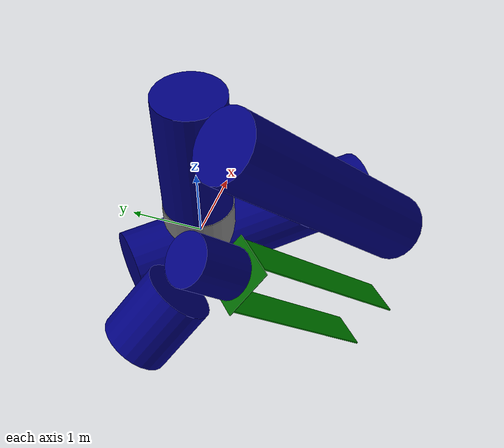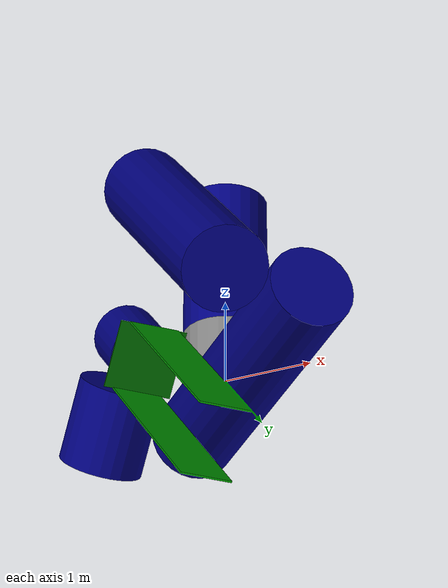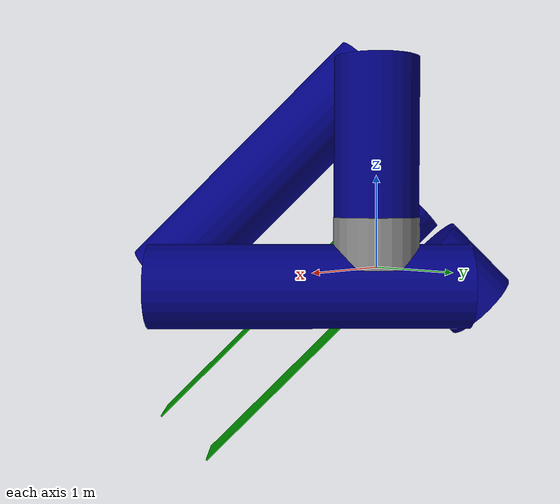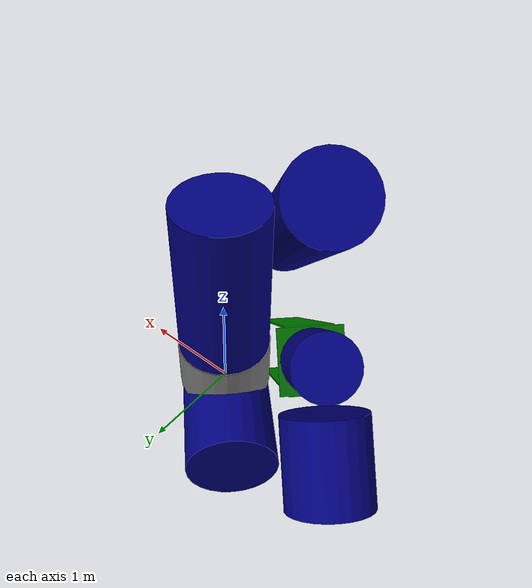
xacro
<?xml version="1.0"?>
<robot name="my_robot" xmlns:xacro="http://www.ros.org/wiki/xacro">

    <xacro:include filename="common_properties.xacro"/>
    <xacro:include filename="arm.xacro"/>
    <xacro:include filename="gripper.xacro"/>
    <xacro:include filename="$(find my_robot_description)/urdf/my_robot.ros2_control.xacro" />

    <joint name="gripper_base_joint" type="fixed">
        <parent link="tool_link"/>
        <child link="gripper_base_link"/>
        <origin xyz="0 0 -2.4" rpy="0 0 0"/>
    </joint>

</robot>

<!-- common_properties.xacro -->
<robot xmlns:xacro="http://www.ros.org/wiki/xacro">

    <material name="grey">
        <color rgba="0.5 0.5 0.5 1"/>
    </material>

    <material name="blue">
        <color rgba="0 0 0.5 1"/>
    </material>

    <material name="red">
        <color rgba="0.5 0 0 1"/>
    </material>

    <material name="dark_green">
        <color rgba="0 0.4 0 1"/>
    </material>

    <material name="light_green">
        <color rgba="0 0.6 0 1"/>
    </material>

</robot>

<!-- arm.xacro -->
<robot xmlns:xacro="http://www.ros.org/wiki/xacro">

    <link name="base_link">
        <visual>
            <geometry>
                <cylinder radius="0.475" length="0.547"/>
            </geometry>
            <origin xyz = "0 0 0.2735   " rpy="0 0 0"/>
            <material name="grey"/>
        </visual>
        <collision>
            <geometry>
                <box size="0.9605 0.9605 0.547"/>
            </geometry>
            <origin xyz = "0 0 0.2735" rpy="0 0 0"/>
        </collision>
    </link>

    <link name="link1">
        <visual>
            <geometry>
                <cylinder radius="0.465" length="1.72"/>
            </geometry>
            <origin xyz = "0 0 0.86" rpy="0 0 0"/>
            <material name="blue"/>
        </visual>
        <collision>
            <geometry>
                <cylinder radius="0.465" length="1.72"/>
            </geometry>
            <origin xyz = "0 0 0.86" rpy="0 0 0"/>
        </collision>
    </link>

    <link name="link2">
        <visual>
            <geometry>
                <cylinder radius="0.465" length="3.5"/>
            </geometry>
            <origin xyz = "0 0 1.75" rpy="0 0 0"/>
            <material name="blue"/>
        </visual>
        <collision>
            <geometry>
                <cylinder radius="0.465" length="3.5"/>
            </geometry>
            <origin xyz = "0 0 1.75" rpy="0 0 0"/>
        </collision>
    </link>

    <link name="link3">
        <visual>
            <geometry>
                <cylinder radius="0.465" length="3.5"/>
            </geometry>
            <origin xyz = "0 0 1.75" rpy="0 0 0"/>
            <material name="blue"/>
        </visual>
        <collision>
            <geometry>
                <cylinder radius="0.465" length="3.5"/>
            </geometry>
            <origin xyz = "0 0 1.75" rpy="0 0 0"/>
        </collision>
    </link>

    <link name="link4"/>
`
    <link name="link5">
        <visual>
            <geometry>
                <cylinder radius="0.465" length="0.95"/>
            </geometry>
            <origin xyz = "0 0 -0.475" rpy="0 0 0"/>
            <material name="blue"/>
        </visual>
        <collision>
            <geometry>
                <cylinder radius="0.465" length="0.95"/>
            </geometry>
            <origin xyz = "0 0 -0.475" rpy="0 0 0"/>
        </collision>
    </link>

    <link name="link6">
        <visual>
            <geometry>
                <cylinder radius="0.36" length="0.8"/>
            </geometry>
            <origin xyz = "0.1 0 0" rpy="0 1.57 0"/>
            <material name="blue"/>
        </visual>
        <collision>
            <geometry>
                <cylinder radius="0.36" length="0.8"/>
            </geometry>
            <origin xyz = "0.1 0 0" rpy="0 1.57 0"/>
        </collision>
    </link>

    <link name="tool_link"/>

    <joint name="joint1" type="revolute">
        <parent link="base_link"/>
        <child link="link1"/>
        <origin xyz="0 0 0.547" rpy="0 0 -2.355"/>
        <axis xyz="0 0 1"/>
        <limit lower="0" upper="4.710" effort="1000.0" velocity="1.0"/>
    </joint>

    <joint name="joint2" type="revolute">
        <parent link="link1"/>
        <child link="link2"/>
        <origin xyz="0.9605 0 1.72" rpy="-2.355 0 0"/>
        <axis xyz="1 0 0"/>
        <limit lower="0" upper="4.710" effort="1000.0" velocity="1.0"/>
    </joint>

    <joint name="joint3" type="revolute">
        <parent link="link2"/>
        <child link="link3"/>
        <origin xyz="-0.9580 0 3.5" rpy="-2.355 0 0"/>
        <axis xyz="1 0 0"/>
        <limit lower="0" upper="4.710" effort="1000.0" velocity="1.0"/>
    </joint>

    <joint name="joint4" type="revolute">
        <parent link="link3"/>
        <child link="link4"/>
        <origin xyz="0.95 0 3.5" rpy="-2.355 0 0"/>
        <axis xyz="1 0 0"/>
        <limit lower="0" upper="4.710" effort="1000.0" velocity="1.0"/>
    </joint>

    <joint name="joint5" type="revolute">
        <parent link="link4"/>
        <child link="link5"/>
        <origin xyz="0 0 0.475" rpy="0 0 1.57"/>
        <axis xyz="0 0 -1"/>
        <limit lower="0" upper="3.14" effort="1000.0" velocity="1.0"/>
    </joint>

    <joint name="joint6" type="revolute">
        <parent link="link5"/>
        <child link="link6"/>
        <origin xyz="0 0 0.475" rpy="0 0 0"/>
        <axis xyz="1 0 0"/>
        <limit lower="0" upper="3.14" effort="1000.0" velocity="1.0"/>
    </joint>

    <joint name="hand_tool_joint" type="fixed">
        <parent link="link6"/>
        <child link="tool_link"/>
        <origin xyz="3.0 0 0" rpy="0 1.57 0"/>
    </joint>

</robot>

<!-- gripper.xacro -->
<robot xmlns:xacro="https://www.ros.org/wiki/xacro">

    <link name="gripper_base_link">
        <visual>
            <geometry>
                <box size="0.75 0.75 0.02"/>
            </geometry>
            <origin xyz="0 0 0.01" rpy="0 0 0"/>
            <material name="dark_green"/>
        </visual>
        <collision>
            <geometry>
                <box size="0.75 0.75 0.02"/>
            </geometry>
            <origin xyz="0 0 0.01" rpy="0 0 0"/>
        </collision>
    </link>

    <link name="gripper_left_finger_link">
        <visual>
            <geometry>
                <box size="0.02 0.55 3.0"/>
            </geometry>
            <origin xyz="0 0 1.5" rpy="0 0 0"/>
            <material name="light_green"/>
        </visual>
        <collision>
            <geometry>
                <box size="0.02 0.55 3.0"/>
            </geometry>
            <origin xyz="0 0 1.5" rpy="0 0 0"/>
        </collision>
    </link>

    <link name="gripper_right_finger_link">
        <visual>
            <geometry>
                <box size="0.02 0.55 3.0"/>
            </geometry>
            <origin xyz="0 0 1.5" rpy="0 0 0"/>
            <material name="light_green"/>
        </visual>
        <collision>
            <geometry>
                <box size="0.02 0.55 3.0"/>
            </geometry>
            <origin xyz="0 0 1.5" rpy="0 0 0"/>
        </collision>
    </link>

    <joint name="gripper_left_finger_joint" type="prismatic">
        <parent link="gripper_base_link"/>
        <child link="gripper_left_finger_link"/>
        <origin xyz="-0.375 0 0.02" rpy="0 0 0"/>
        <axis xyz="1 0 0"/>
        <limit lower="0.0" upper="0.375" effort="1000.0" velocity="1.0"/>
    </joint>

    <joint name="gripper_right_finger_joint" type="prismatic">
        <parent link="gripper_base_link"/>
        <child link="gripper_right_finger_link"/>
        <origin xyz="0.375 0 0.02" rpy="0 0 0"/>
        <axis xyz="1 0 0"/>
        <mimic joint="gripper_left_finger_joint" multiplier="-1.0"/>
        <limit lower="-0.375" upper="0.0" effort="1000.0" velocity="1.0"/>
    </joint>

</robot>
